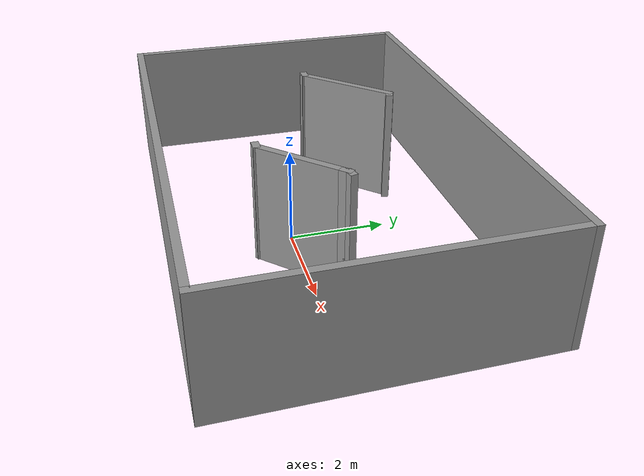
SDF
<?xml version='1.0'?>
<sdf version='1.7'>
  <model name='ul24'>
    <pose>-0.28669 0.664536 0 0 -0 0</pose>
    <link name='Wall_0'>
      <collision name='Wall_0_Collision'>
        <geometry>
          <box>
            <size>0.25 0.15 2.5</size>
          </box>
        </geometry>
        <pose>0 0 1.25 0 -0 0</pose>
      </collision>
      <visual name='Wall_0_Visual'>
        <pose>0 0 1.25 0 -0 0</pose>
        <geometry>
          <box>
            <size>0.25 0.15 2.5</size>
          </box>
        </geometry>
        <material>
          <script>
            <uri>file://media/materials/scripts/gazebo.material</uri>
            <name>Gazebo/Grey</name>
          </script>
          <ambient>1 1 1 1</ambient>
        </material>
        <meta>
          <layer>0</layer>
        </meta>
      </visual>
      <pose>-2.49618 0.3456 0 0 -0 0</pose>
    </link>
    <link name='Wall_1'>
      <collision name='Wall_1_Collision'>
        <geometry>
          <box>
            <size>2.25 0.15 2.5</size>
          </box>
        </geometry>
        <pose>0 0 1.25 0 -0 0</pose>
      </collision>
      <visual name='Wall_1_Visual'>
        <pose>0 0 1.25 0 -0 0</pose>
        <geometry>
          <box>
            <size>2.25 0.15 2.5</size>
          </box>
        </geometry>
        <material>
          <script>
            <uri>file://media/materials/scripts/gazebo.material</uri>
            <name>Gazebo/Grey</name>
          </script>
          <ambient>1 1 1 1</ambient>
        </material>
        <meta>
          <layer>0</layer>
        </meta>
      </visual>
      <pose>-1.70372 1.08806 0 0 -0 0.785398</pose>
    </link>
    <link name='Wall_10'>
      <collision name='Wall_10_Collision'>
        <geometry>
          <box>
            <size>9.75 0.15 2.5</size>
          </box>
        </geometry>
        <pose>0 0 1.25 0 -0 0</pose>
      </collision>
      <visual name='Wall_10_Visual'>
        <pose>0 0 1.25 0 -0 0</pose>
        <geometry>
          <box>
            <size>9.75 0.15 2.5</size>
          </box>
        </geometry>
        <material>
          <script>
            <uri>file://media/materials/scripts/gazebo.material</uri>
            <name>Gazebo/Grey</name>
          </script>
          <ambient>1 1 1 1</ambient>
        </material>
        <meta>
          <layer>0</layer>
        </meta>
      </visual>
      <pose>-0 -3.175 0 0 -0 0</pose>
    </link>
    <link name='Wall_11'>
      <collision name='Wall_11_Collision'>
        <geometry>
          <box>
            <size>6.5 0.15 2.5</size>
          </box>
        </geometry>
        <pose>0 0 1.25 0 -0 0</pose>
      </collision>
      <visual name='Wall_11_Visual'>
        <pose>0 0 1.25 0 -0 0</pose>
        <geometry>
          <box>
            <size>6.5 0.15 2.5</size>
          </box>
        </geometry>
        <material>
          <script>
            <uri>file://media/materials/scripts/gazebo.material</uri>
            <name>Gazebo/Grey</name>
          </script>
          <ambient>1 1 1 1</ambient>
        </material>
        <meta>
          <layer>0</layer>
        </meta>
      </visual>
      <pose>4.8 -0 0 0 -0 1.5708</pose>
    </link>
    <link name='Wall_12'>
      <collision name='Wall_12_Collision'>
        <geometry>
          <box>
            <size>9.75 0.15 2.5</size>
          </box>
        </geometry>
        <pose>0 0 1.25 0 -0 0</pose>
      </collision>
      <visual name='Wall_12_Visual'>
        <pose>0 0 1.25 0 -0 0</pose>
        <geometry>
          <box>
            <size>9.75 0.15 2.5</size>
          </box>
        </geometry>
        <material>
          <script>
            <uri>file://media/materials/scripts/gazebo.material</uri>
            <name>Gazebo/Grey</name>
          </script>
          <ambient>1 1 1 1</ambient>
        </material>
        <meta>
          <layer>0</layer>
        </meta>
      </visual>
      <pose>-0 3.175 0 0 -0 3.14159</pose>
    </link>
    <link name='Wall_2'>
      <collision name='Wall_2_Collision'>
        <geometry>
          <box>
            <size>0.25 0.15 2.5</size>
          </box>
        </geometry>
        <pose>0 0 1.25 0 -0 0</pose>
      </collision>
      <visual name='Wall_2_Visual'>
        <pose>0 0 1.25 0 -0 0</pose>
        <geometry>
          <box>
            <size>0.25 0.15 2.5</size>
          </box>
        </geometry>
        <material>
          <script>
            <uri>file://media/materials/scripts/gazebo.material</uri>
            <name>Gazebo/Grey</name>
          </script>
          <ambient>1 1 1 1</ambient>
        </material>
        <meta>
          <layer>0</layer>
        </meta>
      </visual>
      <pose>-0.912959 1.81758 0 0 -0 -0.261799</pose>
    </link>
    <link name='Wall_4'>
      <collision name='Wall_4_Collision'>
        <geometry>
          <box>
            <size>0.25 0.15 2.5</size>
          </box>
        </geometry>
        <pose>0 0 1.25 0 -0 0</pose>
      </collision>
      <visual name='Wall_4_Visual'>
        <pose>0 0 1.25 0 -0 0</pose>
        <geometry>
          <box>
            <size>0.25 0.15 2.5</size>
          </box>
        </geometry>
        <material>
          <script>
            <uri>file://media/materials/scripts/gazebo.material</uri>
            <name>Gazebo/Grey</name>
          </script>
          <ambient>1 1 1 1</ambient>
        </material>
        <meta>
          <layer>0</layer>
        </meta>
      </visual>
      <pose>0.744779 -1.4149 0 0 -0 0</pose>
    </link>
    <link name='Wall_5'>
      <collision name='Wall_5_Collision'>
        <geometry>
          <box>
            <size>2 0.15 2.5</size>
          </box>
        </geometry>
        <pose>0 0 1.25 0 -0 0</pose>
      </collision>
      <visual name='Wall_5_Visual'>
        <pose>0 0 1.25 0 -0 0</pose>
        <geometry>
          <box>
            <size>2 0.15 2.5</size>
          </box>
        </geometry>
        <material>
          <script>
            <uri>file://media/materials/scripts/gazebo.material</uri>
            <name>Gazebo/Grey</name>
          </script>
          <ambient>1 1 1 1</ambient>
        </material>
        <meta>
          <layer>0</layer>
        </meta>
      </visual>
      <pose>1.44885 -0.760827 0 0 -0 0.785398</pose>
    </link>
    <link name='Wall_6'>
      <collision name='Wall_6_Collision'>
        <geometry>
          <box>
            <size>0.25 0.15 2.5</size>
          </box>
        </geometry>
        <pose>0 0 1.25 0 -0 0</pose>
      </collision>
      <visual name='Wall_6_Visual'>
        <pose>0 0 1.25 0 -0 0</pose>
        <geometry>
          <box>
            <size>0.25 0.15 2.5</size>
          </box>
        </geometry>
        <material>
          <script>
            <uri>file://media/materials/scripts/gazebo.material</uri>
            <name>Gazebo/Grey</name>
          </script>
          <ambient>1 1 1 1</ambient>
        </material>
        <meta>
          <layer>0</layer>
        </meta>
      </visual>
      <pose>2.13828 -0.071398 0 0 -0 0.785398</pose>
    </link>
    <link name='Wall_7'>
      <collision name='Wall_7_Collision'>
        <geometry>
          <box>
            <size>0.25 0.15 2.5</size>
          </box>
        </geometry>
        <pose>0 0 1.25 0 -0 0</pose>
      </collision>
      <visual name='Wall_7_Visual'>
        <pose>0 0 1.25 0 -0 0</pose>
        <geometry>
          <box>
            <size>0.25 0.15 2.5</size>
          </box>
        </geometry>
        <material>
          <script>
            <uri>file://media/materials/scripts/gazebo.material</uri>
            <name>Gazebo/Grey</name>
          </script>
          <ambient>1 1 1 1</ambient>
        </material>
        <meta>
          <layer>0</layer>
        </meta>
      </visual>
      <pose>2.22193 -0.023102 0 0 -0 0.261799</pose>
    </link>
    <link name='Wall_9'>
      <collision name='Wall_9_Collision'>
        <geometry>
          <box>
            <size>6.5 0.15 2.5</size>
          </box>
        </geometry>
        <pose>0 0 1.25 0 -0 0</pose>
      </collision>
      <visual name='Wall_9_Visual'>
        <pose>0 0 1.25 0 -0 0</pose>
        <geometry>
          <box>
            <size>6.5 0.15 2.5</size>
          </box>
        </geometry>
        <material>
          <script>
            <uri>file://media/materials/scripts/gazebo.material</uri>
            <name>Gazebo/Grey</name>
          </script>
          <ambient>1 1 1 1</ambient>
        </material>
        <meta>
          <layer>0</layer>
        </meta>
      </visual>
      <pose>-4.8 -0 0 0 -0 -1.5708</pose>
    </link>
    <static>1</static>
  </model>
</sdf>
